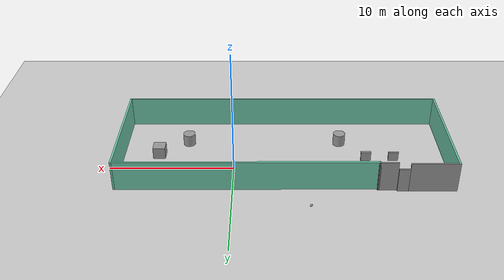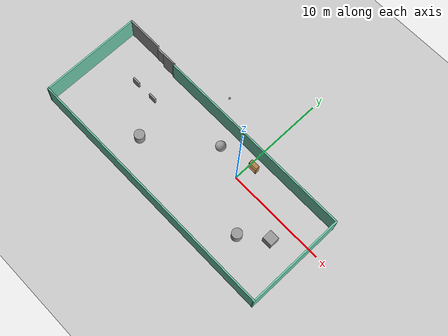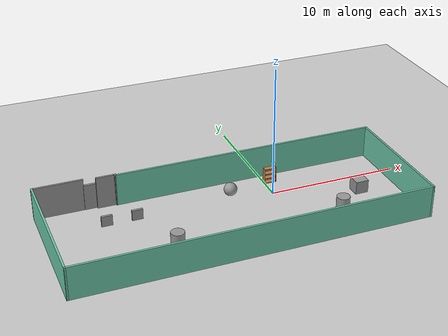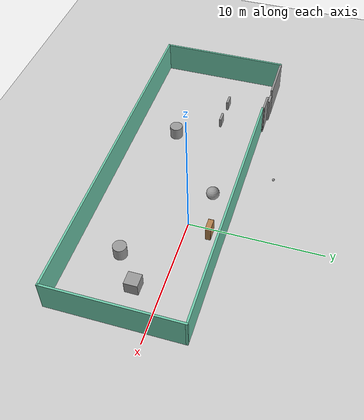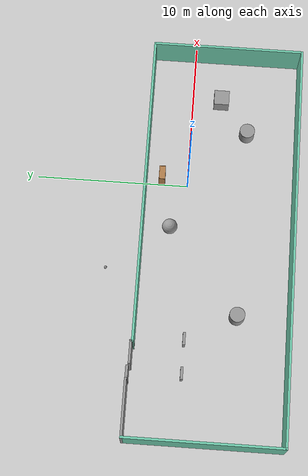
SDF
<sdf version="1.7">
 <world name="default">
  <model name="ground_plane">
   <static>1</static>
   <link name="link">
    <collision name="collision">
     <geometry><plane><normal>0 0 1</normal><size>100 100</size></plane></geometry>
     <surface>
      <contact><collide_bitmask>65535</collide_bitmask></contact>
      <friction><ode><mu>100</mu><mu2>50</mu2></ode></friction>
     </surface>
    </collision>
    <visual name="visual">
     <cast_shadows>0</cast_shadows>
     <geometry><plane><normal>0 0 1</normal><size>100 100</size></plane></geometry>
     <material>
      <script><uri>file://media/materials/scripts/gazebo.material</uri><name>Gazebo/Grey</name></script>
     </material>
    </visual>
   </link>
  </model>
  <model name="bookshelf">
   <static>1</static>
   <link name="link">
    <inertial><mass>1</mass></inertial>
    <collision name="back">
     <pose>0 0.005 0.6 0 -0 0</pose>
     <geometry><box><size>0.9 0.01 1.2</size></box></geometry>
    </collision>
    <visual name="visual1">
     <pose>0 0.005 0.6 0 -0 0</pose>
     <geometry><box><size>0.9 0.01 1.2</size></box></geometry>
     <material>
      <script><uri>file://media/materials/scripts/gazebo.material</uri><name>Gazebo/Wood</name></script>
     </material>
    </visual>
    <collision name="left_side">
     <pose>0.45 -0.195 0.6 0 -0 0</pose>
     <geometry><box><size>0.02 0.4 1.2</size></box></geometry>
    </collision>
    <visual name="visual2">
     <pose>0.45 -0.195 0.6 0 -0 0</pose>
     <geometry><box><size>0.02 0.4 1.2</size></box></geometry>
     <material>
      <script><uri>file://media/materials/scripts/gazebo.material</uri><name>Gazebo/Wood</name></script>
     </material>
    </visual>
    <collision name="right_side">
     <pose>-0.45 -0.195 0.6 0 -0 0</pose>
     <geometry><box><size>0.02 0.4 1.2</size></box></geometry>
    </collision>
    <visual name="visual3">
     <pose>-0.45 -0.195 0.6 0 -0 0</pose>
     <geometry><box><size>0.02 0.4 1.2</size></box></geometry>
     <material>
      <script><uri>file://media/materials/scripts/gazebo.material</uri><name>Gazebo/Wood</name></script>
     </material>
    </visual>
    <collision name="bottom">
     <pose>0 -0.195 0.03 0 -0 0</pose>
     <geometry><box><size>0.88 0.4 0.06</size></box></geometry>
    </collision>
    <visual name="visual4">
     <pose>0 -0.195 0.03 0 -0 0</pose>
     <geometry><box><size>0.88 0.4 0.06</size></box></geometry>
     <material>
      <script><uri>file://media/materials/scripts/gazebo.material</uri><name>Gazebo/Wood</name></script>
     </material>
    </visual>
    <collision name="top">
     <pose>0 -0.195 1.19 0 -0 0</pose>
     <geometry><box><size>0.88 0.4 0.02</size></box></geometry>
    </collision>
    <visual name="visual5">
     <pose>0 -0.195 1.19 0 -0 0</pose>
     <geometry><box><size>0.88 0.4 0.02</size></box></geometry>
     <material>
      <script><uri>file://media/materials/scripts/gazebo.material</uri><name>Gazebo/Wood</name></script>
     </material>
    </visual>
    <collision name="low_shelf">
     <pose>0 -0.195 0.43 0 -0 0</pose>
     <geometry><box><size>0.88 0.4 0.02</size></box></geometry>
    </collision>
    <visual name="visual6">
     <pose>0 -0.195 0.43 0 -0 0</pose>
     <geometry><box><size>0.88 0.4 0.02</size></box></geometry>
     <material>
      <script><uri>file://media/materials/scripts/gazebo.material</uri><name>Gazebo/Wood</name></script>
     </material>
    </visual>
    <collision name="high_shelf">
     <pose>0 -0.195 0.8 0 -0 0</pose>
     <geometry><box><size>0.88 0.4 0.02</size></box></geometry>
    </collision>
    <visual name="visual7">
     <pose>0 -0.195 0.8 0 -0 0</pose>
     <geometry><box><size>0.88 0.4 0.02</size></box></geometry>
     <material>
      <script><uri>file://media/materials/scripts/gazebo.material</uri><name>Gazebo/Wood</name></script>
     </material>
    </visual>
   </link>
   <pose>0.47905 1.92776 0 0 -0 0</pose>
  </model>
  <model name="unit_cylinder">
   <pose>3.89319 -3.73241 0.499999 0 -0 4.1e-05</pose>
   <link name="link">
    <inertial>
     <mass>1</mass>
     <inertia><ixx>0.145833</ixx><ixy>0</ixy><ixz>0</ixz><iyy>0.145833</iyy><iyz>0</iyz><izz>0.125</izz></inertia>
    </inertial>
    <collision name="collision">
     <geometry><cylinder><radius>0.5</radius><length>1</length></cylinder></geometry>
    </collision>
    <visual name="visual">
     <geometry><cylinder><radius>0.5</radius><length>1</length></cylinder></geometry>
     <material>
      <script><name>Gazebo/Grey</name><uri>file://media/materials/scripts/gazebo.material</uri></script>
     </material>
    </visual>
   </link>
  </model>
  <model name="Building">
   <pose>-4.00002 -2 0 0 -0 0</pose>
   <link name="Door_0">
    <collision name="Door_0_Collision">
     <geometry><box><size>0.9 0.17 2</size></box></geometry>
     <pose>0 0 1 0 -0 0</pose>
    </collision>
    <visual name="Door_0_Visual">
     <pose>0 0 1 0 -0 0</pose>
     <geometry><box><size>0.9 0.17 2</size></box></geometry>
     <material>
      <script><uri>file://media/materials/scripts/gazebo.material</uri><name>Gazebo/Grey</name></script>
     </material>
    </visual>
    <pose>-9.08568 5.03677 0 0 -0 0</pose>
   </link>
   <link name="Wall_0">
    <collision name="Wall_0_Collision">
     <geometry><box><size>3.75 0.15 2.5</size></box></geometry>
     <pose>0 0 1.25 0 -0 0</pose>
    </collision>
    <visual name="Wall_0_Visual">
     <pose>0 0 1.25 0 -0 0</pose>
     <geometry><box><size>3.75 0.15 2.5</size></box></geometry>
     <material>
      <script><uri>file://media/materials/scripts/gazebo.material</uri><name>Gazebo/Grey</name></script>
      <ambient>1 1 1 1</ambient>
     </material>
     <meta><layer>0</layer></meta>
    </visual>
    <pose>-11.375 5.05 0 0 -0 3.14159</pose>
   </link>
   <link name="Wall_2">
    <collision name="Wall_2_Collision">
     <geometry><box><size>10.25 0.15 2.5</size></box></geometry>
     <pose>0 0 1.25 0 -0 0</pose>
    </collision>
    <visual name="Wall_2_Visual">
     <pose>0 0 1.25 0 -0 0</pose>
     <geometry><box><size>10.25 0.15 2.5</size></box></geometry>
     <material>
      <script><uri>file://media/materials/scripts/gazebo.material</uri><name>Gazebo/Grey</name></script>
      <ambient>0.435294 0.796078 0.67451 1</ambient>
     </material>
     <meta><layer>0</layer></meta>
    </visual>
    <pose>-13.175 0 0 0 -0 -1.5708</pose>
   </link>
   <link name="Wall_3">
    <collision name="Wall_3_Collision">
     <geometry><box><size>26.5 0.15 2.5</size></box></geometry>
     <pose>0 0 1.25 0 -0 0</pose>
    </collision>
    <visual name="Wall_3_Visual">
     <pose>0 0 1.25 0 -0 0</pose>
     <geometry><box><size>26.5 0.15 2.5</size></box></geometry>
     <material>
      <script><uri>file://media/materials/scripts/gazebo.material</uri><name>Gazebo/Grey</name></script>
      <ambient>0.435294 0.796078 0.67451 1</ambient>
     </material>
     <meta><layer>0</layer></meta>
    </visual>
    <pose>0 -5.05 0 0 -0 0</pose>
   </link>
   <link name="Wall_4">
    <collision name="Wall_4_Collision">
     <geometry><box><size>10 0.15 2.5</size></box></geometry>
     <pose>0 0 1.25 0 -0 0</pose>
    </collision>
    <visual name="Wall_4_Visual">
     <pose>0 0 1.25 0 -0 0</pose>
     <geometry><box><size>10 0.15 2.5</size></box></geometry>
     <material>
      <script><uri>file://media/materials/scripts/gazebo.material</uri><name>Gazebo/Grey</name></script>
      <ambient>0.435294 0.796078 0.67451 1</ambient>
     </material>
     <meta><layer>0</layer></meta>
    </visual>
    <pose>13.175 -0.125 0 0 -0 1.5708</pose>
   </link>
   <link name="Wall_5">
    <collision name="Wall_5_Collision">
     <geometry><box><size>20.5 0.15 2.5</size></box></geometry>
     <pose>0 0 1.25 0 -0 0</pose>
    </collision>
    <visual name="Wall_5_Visual">
     <pose>0 0 1.25 0 -0 0</pose>
     <geometry><box><size>20.5 0.15 2.5</size></box></geometry>
     <material>
      <script><uri>file://media/materials/scripts/gazebo.material</uri><name>Gazebo/Grey</name></script>
      <ambient>0.435294 0.796078 0.67451 1</ambient>
     </material>
     <meta><layer>0</layer></meta>
    </visual>
    <pose>3 4.8 0 0 -0 3.14159</pose>
   </link>
   <link name="Wall_6">
    <collision name="Wall_6_Collision">
     <geometry><box><size>0.25 0.15 2.5</size></box></geometry>
     <pose>0 0 1.25 0 -0 0</pose>
    </collision>
    <visual name="Wall_6_Visual">
     <pose>0 0 1.25 0 -0 0</pose>
     <geometry><box><size>0.25 0.15 2.5</size></box></geometry>
     <material>
      <script><uri>file://media/materials/scripts/gazebo.material</uri><name>Gazebo/Grey</name></script>
      <ambient>1 1 1 1</ambient>
     </material>
     <meta><layer>0</layer></meta>
    </visual>
    <pose>-7.18794 4.8483 0 0 -0 1.8326</pose>
   </link>
   <link name="Wall_7">
    <collision name="Wall_7_Collision">
     <geometry><box><size>0.16 0.15 2.5</size></box></geometry>
     <pose>0 0 1.25 0 -0 0</pose>
    </collision>
    <visual name="Wall_7_Visual">
     <pose>0 0 1.25 0 -0 0</pose>
     <geometry><box><size>0.16 0.15 2.5</size></box></geometry>
     <material>
      <script><uri>file://media/materials/scripts/gazebo.material</uri><name>Gazebo/Grey</name></script>
      <ambient>1 1 1 1</ambient>
     </material>
     <meta><layer>0</layer></meta>
    </visual>
    <pose>-7.19588 4.89659 0 0 -0 0</pose>
   </link>
   <link name="Wall_8">
    <collision name="Wall_8_Collision">
     <geometry><box><size>0.16 0.15 2.5</size></box></geometry>
     <pose>0 0 1.25 0 -0 0</pose>
    </collision>
    <visual name="Wall_8_Visual">
     <pose>0 0 1.25 0 -0 0</pose>
     <geometry><box><size>0.16 0.15 2.5</size></box></geometry>
     <material>
      <script><uri>file://media/materials/scripts/gazebo.material</uri><name>Gazebo/Grey</name></script>
      <ambient>1 1 1 1</ambient>
     </material>
     <meta><layer>0</layer></meta>
    </visual>
    <pose>-7.19588 4.89659 0 0 -0 3.14159</pose>
   </link>
   <link name="Wall_9">
    <collision name="Wall_9_Collision">
     <geometry><box><size>1.5 0.15 2.5</size></box></geometry>
     <pose>0 0 1.25 0 -0 0</pose>
    </collision>
    <visual name="Wall_9_Visual">
     <pose>0 0 1.25 0 -0 0</pose>
     <geometry><box><size>1.5 0.15 2.5</size></box></geometry>
     <material>
      <script><uri>file://media/materials/scripts/gazebo.material</uri><name>Gazebo/Grey</name></script>
      <ambient>1 1 1 1</ambient>
     </material>
     <meta><layer>0</layer></meta>
    </visual>
    <pose>-7.87588 4.89659 0 0 -0 3.14159</pose>
   </link>
   <link name="Window_0">
    <collision name="Window_0_Collision">
     <geometry><box><size>0.8 0.17 0.8</size></box></geometry>
     <pose>0 0 0.4 0 -0 0</pose>
    </collision>
    <visual name="Window_0_Visual">
     <pose>0 0 0.4 0 -0 0</pose>
     <geometry><box><size>0.8 0.17 0.8</size></box></geometry>
     <material>
      <script><uri>file://media/materials/scripts/gazebo.material</uri><name>Gazebo/Grey</name></script>
     </material>
    </visual>
    <pose>-8.78128 1.59775 0.5 0 -0 0</pose>
   </link>
   <link name="Window_1">
    <collision name="Window_1_Collision">
     <geometry><box><size>0.8 0.17 0.8</size></box></geometry>
     <pose>0 0 0.4 0 -0 0</pose>
    </collision>
    <visual name="Window_1_Visual">
     <pose>0 0 0.4 0 -0 0</pose>
     <geometry><box><size>0.8 0.17 0.8</size></box></geometry>
     <material>
      <script><uri>file://media/materials/scripts/gazebo.material</uri><name>Gazebo/Grey</name></script>
     </material>
    </visual>
    <pose>-6.58128 1.58905 0.5 0 -0 0</pose>
   </link>
   <static>1</static>
  </model>
  <model name="my_ball">
   <link name="link_0">
    <inertial>
     <mass>1</mass>
     <inertia><ixx>0.1</ixx><ixy>0</ixy><ixz>0</ixz><iyy>0.1</iyy><iyz>0</iyz><izz>0.1</izz></inertia>
    </inertial>
    <visual name="visual">
     <geometry><sphere><radius>0.1</radius></sphere></geometry>
     <material>
      <lighting>1</lighting>
      <script><uri>file://media/materials/scripts/gazebo.material</uri><name>Gazebo/Grey</name></script>
      <shader type="pixel"><normal_map>__default__</normal_map></shader>
      <ambient>1 1 1 1</ambient>
      <diffuse>1 1 1 1</diffuse>
      <specular>1 1 1 1</specular>
      <emissive>1 1 1 1</emissive>
     </material>
    </visual>
    <collision name="collision">
     <geometry><sphere><radius>0.1</radius></sphere></geometry>
     <surface>
      <friction>
       <ode><mu>1</mu><mu2>1</mu2><fdir1>0 0 0</fdir1><slip1>0</slip1><slip2>0</slip2></ode>
       <torsional>
        <coefficient>1</coefficient>
        <patch_radius>0</patch_radius>
        <surface_radius>0</surface_radius>
        <use_patch_radius>1</use_patch_radius>
        <ode><slip>0</slip></ode>
       </torsional>
      </friction>
      <bounce><restitution_coefficient>0</restitution_coefficient><threshold>1e+06</threshold></bounce>
      <contact>
       <collide_without_contact>0</collide_without_contact>
       <collide_without_contact_bitmask>1</collide_without_contact_bitmask>
       <collide_bitmask>1</collide_bitmask>
       <ode>
        <soft_cfm>0</soft_cfm>
        <soft_erp>0.2</soft_erp>
        <kp>1e+13</kp>
        <kd>1</kd>
        <max_vel>0.01</max_vel>
        <min_depth>0</min_depth>
       </ode>
       <bullet>
        <split_impulse>1</split_impulse>
        <split_impulse_penetration_threshold>-0.01</split_impulse_penetration_threshold>
        <soft_cfm>0</soft_cfm>
        <soft_erp>0.2</soft_erp>
        <kp>1e+13</kp>
        <kd>1</kd>
       </bullet>
      </contact>
     </surface>
    </collision>
   </link>
   <static>0</static>
   <pose>-5.96237 5.01437 0.1 0 -0 0</pose>
  </model>
  <model name="unit_box">
   <pose>6.18232 -1.89556 0.499995 0 1e-05 0</pose>
   <link name="link">
    <inertial>
     <mass>1</mass>
     <inertia>
      <ixx>0.166667</ixx>
      <ixy>0</ixy>
      <ixz>0</ixz>
      <iyy>0.166667</iyy>
      <iyz>0</iyz>
      <izz>0.166667</izz>
     </inertia>
    </inertial>
    <collision name="collision"><geometry><box><size>1 1 1</size></box></geometry></collision>
    <visual name="visual">
     <geometry><box><size>1 1 1</size></box></geometry>
     <material>
      <script><name>Gazebo/Grey</name><uri>file://media/materials/scripts/gazebo.material</uri></script>
     </material>
    </visual>
   </link>
  </model>
  <model name="unit_cylinder_0">
   <pose>-8.73317 -3.71642 0.499993 -3e-06 -4e-06 -0</pose>
   <link name="link">
    <inertial>
     <mass>1</mass>
     <inertia><ixx>0.145833</ixx><ixy>0</ixy><ixz>0</ixz><iyy>0.145833</iyy><iyz>0</iyz><izz>0.125</izz></inertia>
    </inertial>
    <collision name="collision">
     <geometry><cylinder><radius>0.5</radius><length>1</length></cylinder></geometry>
    </collision>
    <visual name="visual">
     <geometry><cylinder><radius>0.5</radius><length>1</length></cylinder></geometry>
     <material>
      <script><name>Gazebo/Grey</name><uri>file://media/materials/scripts/gazebo.material</uri></script>
     </material>
    </visual>
   </link>
  </model>
  <model name="unit_sphere">
   <pose>-3 1 0.5 0 -0 0</pose>
   <link name="link">
    <inertial>
     <mass>1</mass>
     <inertia><ixx>0.1</ixx><ixy>0</ixy><ixz>0</ixz><iyy>0.1</iyy><iyz>0</iyz><izz>0.1</izz></inertia>
    </inertial>
    <collision name="collision"><geometry><sphere><radius>0.5</radius></sphere></geometry></collision>
    <visual name="visual">
     <geometry><sphere><radius>0.5</radius></sphere></geometry>
     <material>
      <script><name>Gazebo/Grey</name><uri>file://media/materials/scripts/gazebo.material</uri></script>
     </material>
    </visual>
   </link>
  </model>
 </world>
</sdf>
